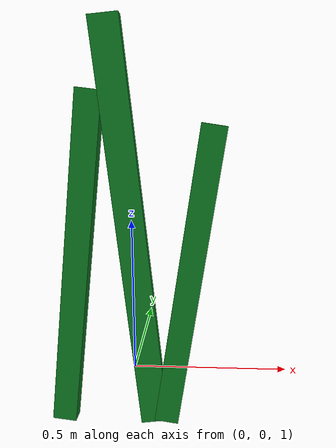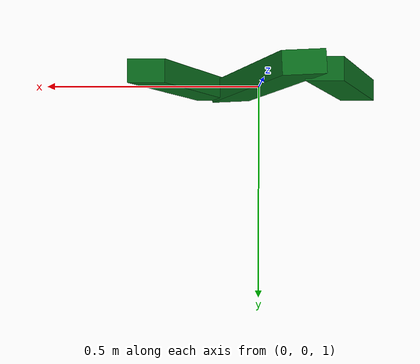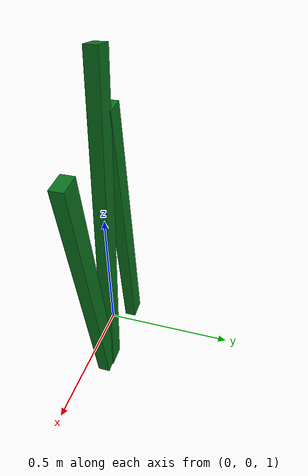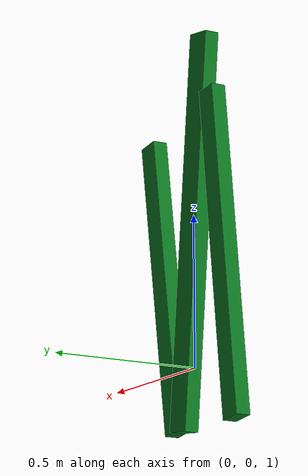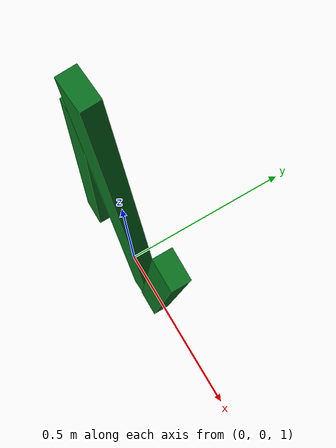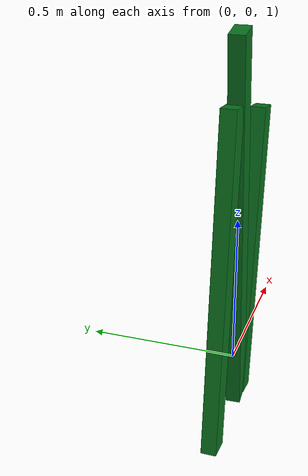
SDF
<?xml version="1.0"?>

<sdf version="1.7">

  <model name="seaweed">

    <static>true</static>

    <pose>0 0 0.8 0 0 0</pose>

    <link name="seaweed_link">

      <!-- Blade 1 -->
      <visual name="blade_1">

        <pose>-0.18 0 0.55 0 0.12 0</pose>

        <geometry>
          <box>
            <size>0.08 0.05 1.1</size>
          </box>
        </geometry>

        <material>
          <ambient>0.03 0.25 0.08 1</ambient>
          <diffuse>0.04 0.45 0.12 1</diffuse>
          <specular>0.01 0.03 0.01 1</specular>
        </material>

      </visual>

      <!-- Blade 2 -->
      <visual name="blade_2">

        <pose>0 0 0.65 0 -0.10 0.05</pose>

        <geometry>
          <box>
            <size>0.09 0.05 1.3</size>
          </box>
        </geometry>

        <material>
          <ambient>0.03 0.25 0.08 1</ambient>
          <diffuse>0.04 0.45 0.12 1</diffuse>
          <specular>0.01 0.03 0.01 1</specular>
        </material>

      </visual>

      <!-- Blade 3 -->
      <visual name="blade_3">

        <pose>0.18 0 0.50 0 0.15 0</pose>

        <geometry>
          <box>
            <size>0.08 0.05 1.0</size>
          </box>
        </geometry>

        <material>
          <ambient>0.03 0.25 0.08 1</ambient>
          <diffuse>0.04 0.45 0.12 1</diffuse>
          <specular>0.01 0.03 0.01 1</specular>
        </material>

      </visual>

    </link>

  </model>

</sdf>
